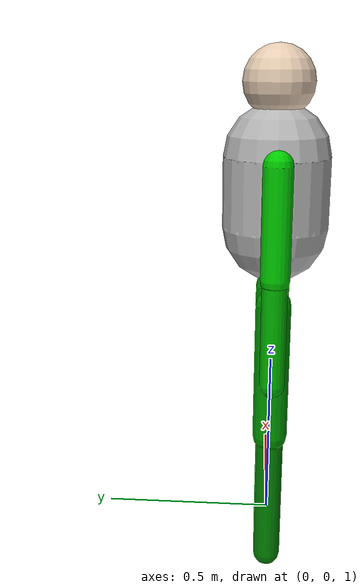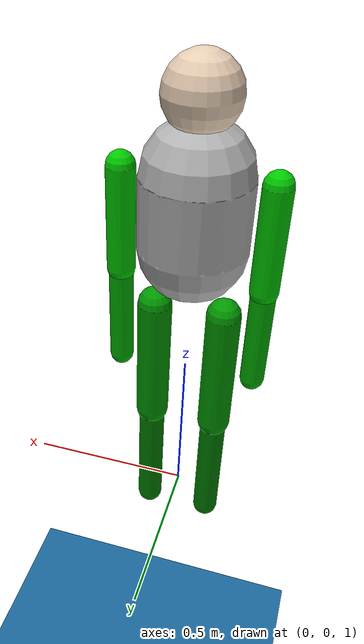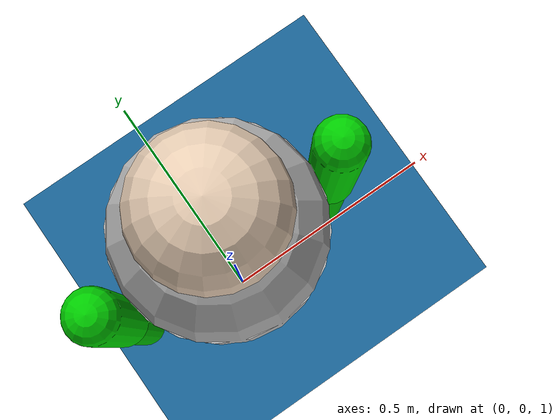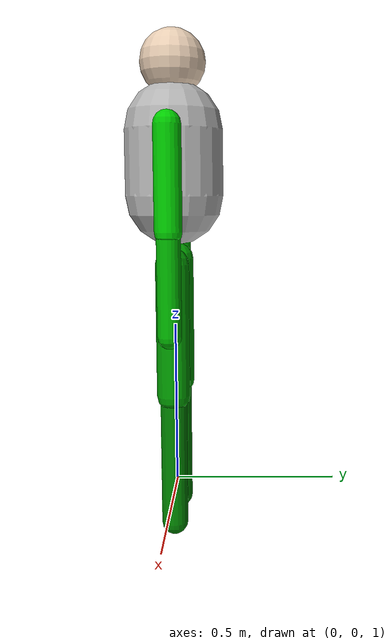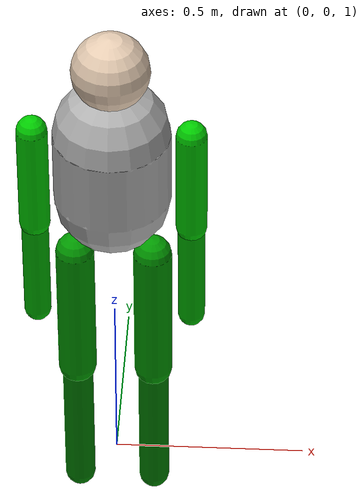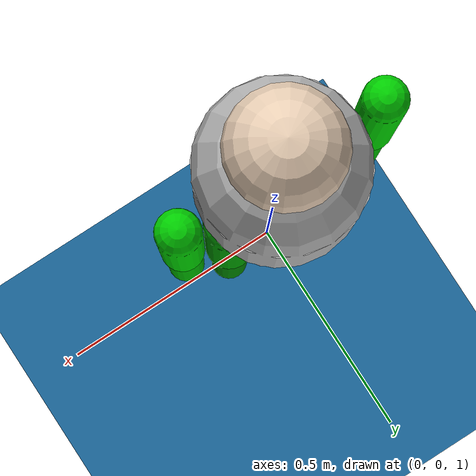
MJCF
<mujoco model="human_swimmer">
    <option gravity="0 0 0" timestep="0.005" viscosity="0.0013" density="1000">
        <flag energy="enable"/>
    </option>

    <asset>
        <texture name="grid" type="2d" builtin="checker" width="512" height="512" rgb1=".1 .2 .3" rgb2=".2 .3 .4"/>
        <material name="grid" texture="grid" texrepeat="1 1" texuniform="true" reflectance=".2"/>
    </asset>

    <default>
        <joint damping="0.5"/>
        <geom friction="0.01 0.01 0.01"/>
    </default>

    <worldbody>
        <!-- Main Directional Light -->
        <light name="sun" pos="0 0 10" dir="0.2 -0.2 -1" diffuse="0.8 0.8 0.8" specular="0.3 0.3 0.3" castshadow="true"/>
        <!-- Fill Light -->
        <light name="fill" pos="0 0 -5" dir="0 0 1" diffuse="0.3 0.3 0.4" specular="0.1 0.1 0.1"/>
        <!-- Ambient Light -->
        <light name="ambient" pos="0 0 0" diffuse="0.1 0.1 0.2" specular="0 0 0"/>

        <geom name="floor" type="plane" size="0 0 .05" material="grid" condim="3" rgba="0.1 0.4 0.6 1"/>

        <camera name="main_camera" pos="10 10 10" xyaxes="1 0 0 0 0 1"/>
        <camera name="chase_cam" pos="0 -4 2" mode="trackcom" xyaxes="0 1 0 0 0 1"/>

        <body name="torso" pos="0 0 2.0">
            <freejoint name="root"/>
            <geom name="chest" type="capsule" size="0.15 0.1 0.2" rgba="0.7 0.7 0.7 1" />

            <!-- Head -->
            <body name="head" pos="0 0 0.3">
                <geom type="sphere" size="0.1" rgba="0.9 0.8 0.7 1"/>
            </body>

            <!-- Right Arm -->
            <body name="right_arm" pos="0.2 0 0.1">
                <joint name="right_shoulder" type="ball"/>
                <!-- Upper Arm: From shoulder to elbow -->
                <geom type="capsule" size="0.04" fromto="0 0 0 0 0 -0.3" rgba="0 0.8 0 1"/>

                <!-- Right Forearm -->
                <body name="right_forearm" pos="0 0 -0.3">
                    <joint name="right_elbow" type="hinge" axis="0 1 0" range="0 2.5" limited="true"/>
                    <geom type="capsule" size="0.035" fromto="0 0 0 0 0 -0.3" rgba="0 0.7 0 1"/>
                </body>
            </body>

            <!-- Left Arm -->
            <body name="left_arm" pos="-0.2 0 0.1">
                <joint name="left_shoulder" type="ball"/>
                <!-- Upper Arm: From shoulder to elbow -->
                <geom type="capsule" size="0.04" fromto="0 0 0 0 0 -0.3" rgba="0 0.8 0 1"/>

                <!-- Left Forearm -->
                <body name="left_forearm" pos="0 0 -0.3">
                    <joint name="left_elbow" type="hinge" axis="0 1 0" range="0 2.5" limited="true"/>
                    <geom type="capsule" size="0.035" fromto="0 0 0 0 0 -0.3" rgba="0 0.7 0 1"/>
                </body>
            </body>

        <!-- Left Leg -->
            <body name="left_leg" pos="-0.1 0 -0.3">
                <!-- 1. Flexion/Extension: Moving leg Forward/Backward -->
                <joint name="left_hip_flex" type="hinge" axis="1 0 0" range="-1.0 2.0" limited="true"/>

                <!-- 2. Abduction/Adduction: Moving leg Out/In (Sideways) -->
                <joint name="left_hip_abd"  type="hinge" axis="0 -1 0" range="-0.5 0.5" limited="true"/>

                <!-- 3. Internal/External Rotation: Twisting the leg -->
                <joint name="left_hip_rot"  type="hinge" axis="0 0 -1" range="-0.2 0.2" limited="true"/>

                <!-- Thigh: From hip down to knee -->
                <geom type="capsule" size="0.05" fromto="0 0 0 0 0 -0.4" rgba="0 0.6 0 1"/>

                <!-- Left Lower Leg -->
                <body name="left_calf" pos="0 0 -0.4">
                    <joint name="left_knee" type="hinge" axis="0 1 0" range="0 2.0" limited="true"/>
                    <geom type="capsule" size="0.04" fromto="0 0 0 0 0 -0.4" rgba="0 0.5 0 1"/>
                </body>
            </body>

        <body name="right_leg" pos="0.1 0 -0.3">
                <!-- 1. Flexion/Extension: Moving leg Forward/Backward -->
                <joint name="right_hip_flex" type="hinge" axis="1 0 0" range="-1.0 2.0" limited="true"/>

                <!-- 2. Abduction/Adduction: Moving leg Out/In (Sideways) -->
                <joint name="right_hip_abd"  type="hinge" axis="0 1 0" range="-0.5 0.5" limited="true"/>

                <!-- 3. Internal/External Rotation: Twisting the leg -->
                <joint name="right_hip_rot"  type="hinge" axis="0 0 1" range="-0.2 0.2" limited="true"/>

                <!-- Thigh: From hip down to knee -->
                <geom type="capsule" size="0.05" fromto="0 0 0 0 0 -0.4" rgba="0 0.6 0 1"/>

                <!-- Right Lower Leg -->
                <body name="right_calf" pos="0 0 -0.4">
                    <joint name="right_knee" type="hinge" axis="0 1 0" range="0 2.0" limited="true"/>
                    <geom type="capsule" size="0.04" fromto="0 0 0 0 0 -0.4" rgba="0 0.5 0 1"/>
                </body>
            </body>
        </body>
    </worldbody>

    <actuator>
        <!-- Shoulder actuators -->
        <motor name="right_shoulder_motor" joint="right_shoulder" gear="20"/>
        <motor name="left_shoulder_motor" joint="left_shoulder" gear="20"/>
        <!-- Elbow actuators -->
        <motor name="right_elbow_motor" joint="right_elbow" gear="40"/>
        <motor name="left_elbow_motor" joint="left_elbow" gear="40"/>

        <!-- Right Hip Motors -->
        <motor name="right_hip_flex_motor" joint="right_hip_flex" gear="150"/>
        <motor name="right_hip_abd_motor"  joint="right_hip_abd"  gear="60"/>
        <motor name="right_hip_rot_motor"  joint="right_hip_rot"  gear="40"/>

        <!-- Left Hip Motors -->
        <motor name="left_hip_flex_motor"  joint="left_hip_flex"  gear="150"/>
        <motor name="left_hip_abd_motor"   joint="left_hip_abd"   gear="60"/>
        <motor name="left_hip_rot_motor"   joint="left_hip_rot"   gear="40"/>
        <!-- Knee actuators -->
        <motor name="right_knee_motor" joint="right_knee" gear="80"/>
        <motor name="left_knee_motor" joint="left_knee" gear="80"/>
    </actuator>
</mujoco>
